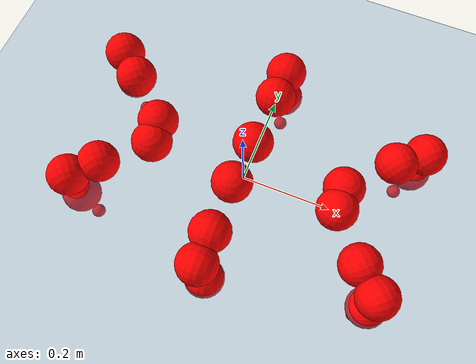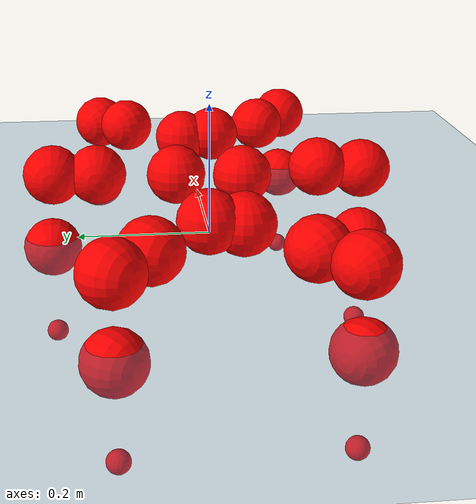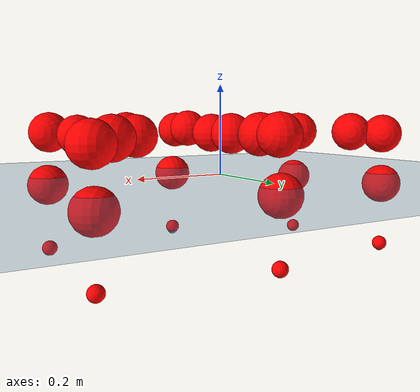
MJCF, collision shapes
<mujoco model="Golem">
  <compiler angle="radian" assetdir="assets" balanceinertia="true" inertiafromgeom="false"/>

  <option timestep="0.005" density="1.2" viscosity="2e-05"/>

  <size nkey="1"/>

  <visual>
    <quality shadowsize="8192"/>
    <map shadowclip="0.5"/>
  </visual>

  <default>
    <default class="/">
      <joint armature="0.01" damping="0.01" frictionloss="0.01"/>
      <geom contype="0" conaffinity="0" group="1" solref="-1000 -80"/>
      <site size="0.01 0.005 0.005" group="5"/>
      <general forcelimited="true" biastype="affine" gainprm="25" biasprm="0 -25 -0.5"/>
      <default class="visual">
        <geom type="mesh" group="2"/>
      </default>
      <default class="collision">
        <geom group="3"/>
      </default>
      <default class="foot">
        <geom size="0.01 0 0" condim="6" group="4" priority="1" solimp="0.015 1 0.01"/>
      </default>
      <default class="reward_collision_sphere">
        <geom group="5" rgba="1 0 0 1"/>
      </default>
    </default>
  </default>

  <asset>
    <texture type="skybox" colorspace="auto" name="//unnamed_texture_0" builtin="gradient" rgb1="0.95 0.95 0.95" rgb2="0.95 0.95 0.95" width="100" height="600"/>
    <texture type="2d" colorspace="auto" name="texplane" builtin="checker" rgb1="0.345 0.575 0.748" rgb2="0.345 0.575 0.748" markrgb="1 1 1" width="512" height="512"/>
    <material name="MatPlane" class="/" texture="texplane" texuniform="true" texrepeat="2 2" specular="0.9"/>
    <mesh name="body" class="/" file="body.stl" scale="0.001 0.001 0.001"/>
    <mesh name="coxa" class="/" file="coxa.stl" scale="0.001 0.001 0.001"/>
    <mesh name="femur" class="/" file="femur.stl" scale="0.001 0.001 0.001"/>
    <mesh name="tibia" class="/" file="tibia.stl" scale="0.001 0.001 0.001"/>
    <mesh name="tarsus" class="/" file="tarsus.stl" scale="0.001 0.001 0.001"/>
  </asset>

  <worldbody>
    <geom name="floor" class="/" size="100 100 0.125" type="plane" group="0" material="MatPlane"/>
    <light name="toplight_shadow" class="/" pos="0 0 5" dir="0.0990148 0.0990148 -0.990148" type="directional" ambient="0.04 0.04 0.04" diffuse="0.55 0.55 0.55" specular="0.12 0.12 0.12"/>
    <light name="toplight_fill" class="/" pos="0 0 5" dir="0.0990148 0.0990148 -0.990148" type="directional" castshadow="false" ambient="0.04 0.04 0.04" diffuse="0.3 0.3 0.3" specular="0.08 0.08 0.08"/>
    <body name="trunk" pos="0.00203214 3.10833e-05 0.00614456" quat="1 0.000238573 0.000311174 -6.19051e-05">
      <inertial pos="0.000325079 -0.00420412 0.00420938" quat="0.999999 0.000665428 0.000824415 0.00021715" mass="4.64783" diaginertia="0.0373243 0.0010656 0.0380679"/>
      <joint name="//unnamed_joint_0" type="free"/>
      <geom name="//unnamed_geom_1" class="/" pos="0 0 0.0845086" quat="1 0 0 0" type="mesh" rgba="0.9 0.9 0.9 1" mesh="body"/>
      <site name="imu" class="/" pos="0.17408 -0.000399019 0.107839" size="0.0109449"/>
      <camera name="track" class="/" pos="0 -1.29037 0" quat="0.707107 0.707107 0 0" mode="trackcom"/>
      <camera name="ego_camera" class="/" pos="0.171317 0 0.132045" quat="-0.5 -0.5 0.5 0.5"/>
      <body name="coxa_RR" pos="-0.228623 -0.0534469 0.0814771" quat="0.379108 0.000493179 -0.00047271 -0.925352">
        <inertial pos="0.00725761 0.00223797 0.00223578" quat="0.999688 -0.0171002 0.0116032 -0.0140639" mass="0.256731" diaginertia="0.0399555 0.00112851 0.0430418"/>
        <joint name="coxa_joint_RR" class="/" pos="0 0 0" axis="0.00356853 -0.00777055 -0.999963" stiffness="0.00640573" range="-3.12348 3.17975" armature="0.0104854" damping="0" frictionloss="0.00818567"/>
        <geom name="//unnamed_geom_2" class="/" type="mesh" rgba="0.2 0.2 0.2 1" mesh="coxa"/>
        <geom name="//unnamed_geom_3" class="reward_collision_sphere" size="0.0437794" pos="-0.0395347 0 0"/>
        <body name="femur_RR" pos="0.0783691 -0.00201412 -0.00376053" quat="0.499999 -0.500007 0.500021 0.499973">
          <inertial pos="-0.00243597 4.65333e-05 -0.00602535" quat="1 -3.23072e-05 -0.000378976 0.000101275" mass="0.267284" diaginertia="0.0406329 0.00114646 0.0445622"/>
          <joint name="femur_joint_RR" class="/" pos="0 0 0" axis="-0.00431486 0.0248655 -0.999681" range="-3.11828 3.13317" armature="0.0114304" damping="0.0264078" frictionloss="0.0104768"/>
          <geom name="//unnamed_geom_4" class="/" type="mesh" rgba="0.9 0.9 0.9 1" mesh="femur"/>
          <geom name="//unnamed_geom_5" class="reward_collision_sphere" size="0.0437794"/>
          <body name="tibia_RR" pos="0.00357998 -0.0678561 0.00233468" quat="-9.31419e-05 1 1.2559e-05 -6.32559e-05">
            <inertial pos="0.000541975 -0.00519525 0.00610552" quat="0.999662 -0.0189044 0.0159738 -0.0079675" mass="0.258455" diaginertia="0.0426609 0.00115242 0.041671"/>
            <joint name="tibia_joint_RR" class="/" pos="0 0 0" axis="0.00499484 -0.00795964 0.999956" stiffness="0.0053379" range="-3.14083 3.205" armature="0.0102384" damping="0.00389038" frictionloss="0.0121725"/>
            <geom name="//unnamed_geom_6" class="/" type="mesh" rgba="0.2 0.2 0.2 1" mesh="tibia"/>
            <geom name="//unnamed_geom_7" class="reward_collision_sphere" size="0.0437794"/>
            <body name="tarsus_RR" pos="0.115592 0.00562079 0.00279685" quat="0.999996 -0.000427625 -4.70083e-05 0.00278304">
              <inertial pos="0.079697 0.00702364 7.23765e-05" quat="0.504966 0.494716 0.504148 0.496084" mass="0.275525" diaginertia="0.03941 0.00103239 0.0399176"/>
              <joint name="tarsus_joint_RR" class="/" pos="0 0 0" axis="-0.00492218 0.00112148 0.999987" stiffness="0.00124231" range="-3.15333 3.09242" armature="0.0111182" damping="0.0227015" frictionloss="0.00978235"/>
              <geom name="//unnamed_geom_8" class="/" type="mesh" rgba="0.9 0.9 0.9 1" mesh="tarsus"/>
              <geom name="foot_1" class="foot" size="0.0101435" pos="0.147596 0 0" quat="0 -0.707107 0 0.707107"/>
              <geom name="//unnamed_geom_10" class="reward_collision_sphere" size="0.0437794"/>
              <geom name="//unnamed_geom_11" class="reward_collision_sphere" size="0.0164173" pos="0.141666 0 0"/>
              <site name="foot_1" class="foot" pos="0.147596 0 0" quat="0 -0.707107 0 0.707107" size="0.0109449"/>
            </body>
          </body>
        </body>
      </body>
      <body name="coxa_RM" pos="-0.00705545 -0.0881468 0.0865628" quat="0.707944 0.00115565 -0.00075249 -0.706267">
        <inertial pos="0.000299893 0.00214206 0.0079889" quat="0.999987 -0.00219231 0.00438711 -0.00166357" mass="0.272442" diaginertia="0.0434527 0.00124475 0.0419755"/>
        <joint name="coxa_joint_RM" class="/" pos="0 0 0" axis="-0.00736364 0.00337977 -0.999967" range="-3.15415 3.09653" armature="0.0114422" damping="0.0133828" frictionloss="0.00968478"/>
        <geom name="//unnamed_geom_12" class="/" type="mesh" rgba="0.2 0.2 0.2 1" mesh="coxa"/>
        <geom name="//unnamed_geom_13" class="reward_collision_sphere" size="0.0437794" pos="-0.0395347 0 0"/>
        <body name="femur_RM" pos="0.0747905 0.00063798 0.00861232" quat="0.500708 -0.50208 0.496901 0.500296">
          <inertial pos="-0.0017023 0.0022059 0.0015485" quat="0.999464 -0.000269984 -0.0113325 -0.0307087" mass="0.268041" diaginertia="0.0373696 0.00113584 0.0395378"/>
          <joint name="femur_joint_RM" class="/" pos="0 0 0" axis="0.00279544 0.00171367 -0.999995" stiffness="0.00327341" range="-3.047 3.04522" armature="0.00690255" damping="0" frictionloss="0.00994525"/>
          <geom name="//unnamed_geom_14" class="/" type="mesh" rgba="0.9 0.9 0.9 1" mesh="femur"/>
          <geom name="//unnamed_geom_15" class="reward_collision_sphere" size="0.0437794"/>
          <body name="tibia_RM" pos="0.00517843 -0.0669999 0.000725983" quat="-5.70476e-07 1 1.50212e-07 -5.04033e-07">
            <inertial pos="-0.000545346 0.00225681 0.00573178" quat="0.999758 0.00776215 -0.00464102 0.0200463" mass="0.297534" diaginertia="0.0421923 0.00118607 0.0394752"/>
            <joint name="tibia_joint_RM" class="/" pos="0 0 0" axis="-0.00633903 -0.00681893 0.999957" range="-3.05216 3.23401" armature="0.0135312" damping="0.0108986" frictionloss="0.0106365"/>
            <geom name="//unnamed_geom_16" class="/" type="mesh" rgba="0.2 0.2 0.2 1" mesh="tibia"/>
            <geom name="//unnamed_geom_17" class="reward_collision_sphere" size="0.0437794"/>
            <body name="tarsus_RM" pos="0.112452 0.00445235 -0.00700319" quat="1 9.34755e-05 1.03135e-05 -3.38872e-05">
              <inertial pos="0.0793391 0.00138248 0.000514512" quat="0.507414 0.495442 0.5091 0.487735" mass="0.262742" diaginertia="0.0390112 0.00112044 0.0394468"/>
              <joint name="tarsus_joint_RM" class="/" pos="0 0 0" axis="0.00781269 -0.000930774 0.999969" stiffness="0.0245431" range="-3.09619 2.97411" armature="0.0109106" damping="0.038064" frictionloss="0.00987554"/>
              <geom name="//unnamed_geom_18" class="/" type="mesh" rgba="0.9 0.9 0.9 1" mesh="tarsus"/>
              <geom name="foot_2" class="foot" size="0.0131267" pos="0.147596 0 0" quat="0 -0.707107 0 0.707107"/>
              <geom name="//unnamed_geom_20" class="reward_collision_sphere" size="0.0437794"/>
              <geom name="//unnamed_geom_21" class="reward_collision_sphere" size="0.0164173" pos="0.141666 0 0"/>
              <site name="foot_2" class="foot" pos="0.147596 0 0" quat="0 -0.707107 0 0.707107" size="0.0109449"/>
            </body>
          </body>
        </body>
      </body>
      <body name="coxa_RF" pos="0.238247 -0.0538953 0.0896779" quat="0.923707 0.00276001 -1.5504e-05 -0.383089">
        <inertial pos="-0.00584911 0.00553357 -0.00194478" quat="0.999965 -0.00065921 -0.0033333 0.00764206" mass="0.254589" diaginertia="0.0371567 0.00108476 0.0410817"/>
        <joint name="coxa_joint_RF" class="/" pos="0 0 0" axis="-0.0206658 -0.0156552 -0.999664" range="-3.14998 3.09219" armature="0.010539" damping="0.017413" frictionloss="0.0109265"/>
        <geom name="//unnamed_geom_22" class="/" type="mesh" rgba="0.2 0.2 0.2 1" mesh="coxa"/>
        <geom name="//unnamed_geom_23" class="reward_collision_sphere" size="0.0437794" pos="-0.0395347 0 0"/>
        <body name="femur_RF" pos="0.0770258 -0.00835583 -0.00488865" quat="0.502303 -0.500686 0.500388 0.496606">
          <inertial pos="0.00200152 -0.00249233 0.000464284" quat="0.999962 -0.00655459 0.00567264 0.000795201" mass="0.265303" diaginertia="0.0401162 0.00115847 0.0393991"/>
          <joint name="femur_joint_RF" class="/" pos="0 0 0" axis="0.00441228 0.00110135 -0.99999" stiffness="0.0172573" range="-3.15996 3.10737" armature="0.0095285" damping="0.0105316" frictionloss="0.0100487"/>
          <geom name="//unnamed_geom_24" class="/" type="mesh" rgba="0.9 0.9 0.9 1" mesh="femur"/>
          <geom name="//unnamed_geom_25" class="reward_collision_sphere" size="0.0437794"/>
          <body name="tibia_RF" pos="-0.00525307 -0.0679549 0.000279172" quat="0.000862215 1 -0.000157389 -0.0002992">
            <inertial pos="-0.00283235 0.00413447 0.000384786" quat="0.999999 2.73467e-05 -0.000688664 -0.000812712" mass="0.286277" diaginertia="0.0437482 0.00120036 0.0407623"/>
            <joint name="tibia_joint_RF" class="/" pos="0 0 0" axis="-0.00719487 -0.00402471 0.999966" stiffness="0.0269923" range="-3.09935 3.23043" armature="0.0108787" damping="0.0527231" frictionloss="0.0108187"/>
            <geom name="//unnamed_geom_26" class="/" type="mesh" rgba="0.2 0.2 0.2 1" mesh="tibia"/>
            <geom name="//unnamed_geom_27" class="reward_collision_sphere" size="0.0437794"/>
            <body name="tarsus_RF" pos="0.114953 0.00565798 -0.000549686" quat="0.999999 -0.0010882 -0.0010155 -0.000348783">
              <inertial pos="0.0798171 0.00189585 0.00124591" quat="0.500345 0.500094 0.499854 0.499707" mass="0.262321" diaginertia="0.0406671 0.00106505 0.0420567"/>
              <joint name="tarsus_joint_RF" class="/" pos="0 0 0" axis="-0.00621192 0.0103426 0.999927" stiffness="0.00119381" range="-3.16698 3.10173" armature="0.0119433" damping="0" frictionloss="0.00973361"/>
              <geom name="//unnamed_geom_28" class="/" type="mesh" rgba="0.9 0.9 0.9 1" mesh="tarsus"/>
              <geom name="foot_3" class="foot" size="0.0103225" pos="0.147596 0 0" quat="0 -0.707107 0 0.707107"/>
              <geom name="//unnamed_geom_30" class="reward_collision_sphere" size="0.0437794"/>
              <geom name="//unnamed_geom_31" class="reward_collision_sphere" size="0.0164173" pos="0.141666 0 0"/>
              <site name="foot_3" class="foot" pos="0.147596 0 0" quat="0 -0.707107 0 0.707107" size="0.0109449"/>
            </body>
          </body>
        </body>
      </body>
      <body name="coxa_LR" pos="-0.23465 0.0497693 0.0889923" quat="0.382556 0.000265354 -0.000227099 0.923932">
        <inertial pos="-0.00016821 -0.000418781 0.0036797" quat="0.999875 0.00702283 -0.014113 0.00108451" mass="0.286077" diaginertia="0.0435178 0.00115579 0.0425529"/>
        <joint name="coxa_joint_LR" class="/" pos="0 0 0" axis="0.0218824 0.002472 -0.999757" range="-3.1491 3.09578" armature="0.0110261" damping="0.00660775" frictionloss="0.0088328"/>
        <geom name="//unnamed_geom_32" class="/" type="mesh" rgba="0.2 0.2 0.2 1" mesh="coxa"/>
        <geom name="//unnamed_geom_33" class="reward_collision_sphere" size="0.0437794" pos="-0.0395347 0 0"/>
        <body name="femur_LR" pos="0.0825269 0.00713287 -0.000767996" quat="0.498824 -0.499889 0.500396 0.500888">
          <inertial pos="-0.0022088 0.000609223 0.00727993" quat="0.999982 -0.00292269 -0.00244255 -0.0045548" mass="0.276298" diaginertia="0.0425432 0.00119585 0.0424214"/>
          <joint name="femur_joint_LR" class="/" pos="0 0 0" axis="0.0139989 0.0345115 0.999306" stiffness="0.00727968" range="-3.1457 3.13761" armature="0.00972225" damping="0" frictionloss="0.00972283"/>
          <geom name="//unnamed_geom_34" class="/" type="mesh" rgba="0.9 0.9 0.9 1" mesh="femur"/>
          <geom name="//unnamed_geom_35" class="reward_collision_sphere" size="0.0437794"/>
          <body name="tibia_LR" pos="0.00400565 -0.0718121 0.00295307" quat="0.000738891 1 0.000654476 -0.000139379">
            <inertial pos="-0.00209804 -0.00521813 -0.00204009" quat="0.999965 -0.0070545 -0.00338178 0.00300487" mass="0.254568" diaginertia="0.041745 0.00108313 0.0368666"/>
            <joint name="tibia_joint_LR" class="/" pos="0 0 0" axis="-0.0259738 -0.032132 -0.999146" range="-3.22724 3.30582" armature="0.00675048" damping="0.0439494" frictionloss="0.00939683"/>
            <geom name="//unnamed_geom_36" class="/" type="mesh" rgba="0.2 0.2 0.2 1" mesh="tibia"/>
            <geom name="//unnamed_geom_37" class="reward_collision_sphere" size="0.0437794"/>
            <body name="tarsus_LR" pos="0.116944 0.00073712 -0.000404837" quat="1 -0.000606823 0.000274554 -0.000251283">
              <inertial pos="0.0717797 -0.0020296 0.00838599" quat="0.499721 0.499417 0.500388 0.500473" mass="0.26419" diaginertia="0.0375828 0.00107036 0.0404449"/>
              <joint name="tarsus_joint_LR" class="/" pos="0 0 0" axis="-0.00538727 -0.00300891 -0.999981" range="-3.18209 3.1722" armature="0.012968" damping="0" frictionloss="0.0108893"/>
              <geom name="//unnamed_geom_38" class="/" type="mesh" rgba="0.9 0.9 0.9 1" mesh="tarsus"/>
              <geom name="foot_4" class="foot" size="0.011612" pos="0.147596 0 0" quat="0.707107 0 -0.707107 0"/>
              <geom name="//unnamed_geom_40" class="reward_collision_sphere" size="0.0437794"/>
              <geom name="//unnamed_geom_41" class="reward_collision_sphere" size="0.0164173" pos="0.141666 0 0"/>
              <site name="foot_4" class="foot" pos="0.147596 0 0" quat="0.707107 0 -0.707107 0" size="0.0109449"/>
            </body>
          </body>
        </body>
      </body>
      <body name="coxa_LM" pos="0.000526964 0.0891756 0.0877543" quat="0.707185 0.000614612 -0.000505791 0.707028">
        <inertial pos="0.00082607 0.00584255 -0.00767755" quat="0.999991 -0.00404718 0.00131312 1.86247e-05" mass="0.250066" diaginertia="0.0386765 0.00109596 0.0401773"/>
        <joint name="coxa_joint_LM" class="/" pos="0 0 0" axis="-0.00331861 0.0222935 -0.999746" range="-3.17814 3.1293" armature="0.0149749" damping="0" frictionloss="0.010727"/>
        <geom name="//unnamed_geom_42" class="/" type="mesh" rgba="0.2 0.2 0.2 1" mesh="coxa"/>
        <geom name="//unnamed_geom_43" class="reward_collision_sphere" size="0.0437794" pos="-0.0395347 0 0"/>
        <body name="femur_LM" pos="0.0782812 -0.00659754 0.00149036" quat="0.499672 -0.500299 0.500015 0.500014">
          <inertial pos="0.00712605 -0.00205882 0.00237229" quat="0.999949 -0.00951967 -0.00326584 0.000233074" mass="0.281608" diaginertia="0.0423666 0.00118111 0.0440854"/>
          <joint name="femur_joint_LM" class="/" pos="0 0 0" axis="-0.00922551 -0.0294286 0.999524" range="-3.14228 3.15272" armature="0.00991984" damping="0.0134246" frictionloss="0.0087291"/>
          <geom name="//unnamed_geom_44" class="/" type="mesh" rgba="0.9 0.9 0.9 1" mesh="femur"/>
          <geom name="//unnamed_geom_45" class="reward_collision_sphere" size="0.0437794"/>
          <body name="tibia_LM" pos="-0.000958825 -0.0648491 -0.000566251" quat="0.00011272 1 0.00041735 0.000357291">
            <inertial pos="0.00196365 0.00122431 -0.00338976" quat="0.999793 0.0121931 -0.0125965 -0.0103214" mass="0.277134" diaginertia="0.0394335 0.00109397 0.0413984"/>
            <joint name="tibia_joint_LM" class="/" pos="0 0 0" axis="-0.00863596 0.000569093 -0.999963" range="-3.09338 3.03096" armature="0.0123792" damping="0.0144648" frictionloss="0.0107118"/>
            <geom name="//unnamed_geom_46" class="/" type="mesh" rgba="0.2 0.2 0.2 1" mesh="tibia"/>
            <geom name="//unnamed_geom_47" class="reward_collision_sphere" size="0.0437794"/>
            <body name="tarsus_LM" pos="0.115006 0.00575025 0.000763754" quat="1 -9.63685e-05 0.000131175 0.000329215">
              <inertial pos="0.0725273 -0.000394875 -0.000597519" quat="0.499503 0.500167 0.499779 0.50055" mass="0.263793" diaginertia="0.038752 0.00109425 0.0374588"/>
              <joint name="tarsus_joint_LM" class="/" pos="0 0 0" axis="-0.00462485 -0.00316478 -0.999984" stiffness="0.0230166" range="-3.18068 3.10552" armature="0.011452" damping="0.0368822" frictionloss="0.0102397"/>
              <geom name="//unnamed_geom_48" class="/" type="mesh" rgba="0.9 0.9 0.9 1" mesh="tarsus"/>
              <geom name="foot_5" class="foot" size="0.0110391" pos="0.147596 0 0" quat="0.707107 0 -0.707107 0"/>
              <geom name="//unnamed_geom_50" class="reward_collision_sphere" size="0.0437794"/>
              <geom name="//unnamed_geom_51" class="reward_collision_sphere" size="0.0164173" pos="0.141666 0 0"/>
              <site name="foot_5" class="foot" pos="0.147596 0 0" quat="0.707107 0 -0.707107 0" size="0.0109449"/>
            </body>
          </body>
        </body>
      </body>
      <body name="coxa_LF" pos="0.237599 0.0525248 0.0853911" quat="0.923417 -0.00012368 -0.000539008 0.383798">
        <inertial pos="-0.00374139 -0.00221452 0.000779418" quat="0.999511 -0.0127051 0.0185145 0.0217568" mass="0.268064" diaginertia="0.0357196 0.00113963 0.0401376"/>
        <joint name="coxa_joint_LF" class="/" pos="0 0 0" axis="0.000678197 0.00443648 -0.99999" range="-3.0945 3.2468" armature="0.0115874" damping="0.00922157" frictionloss="0.0097629"/>
        <geom name="//unnamed_geom_52" class="/" type="mesh" rgba="0.2 0.2 0.2 1" mesh="coxa"/>
        <geom name="//unnamed_geom_53" class="reward_collision_sphere" size="0.0437794" pos="-0.0395347 0 0"/>
        <body name="femur_LF" pos="0.0843213 0.00430792 0.000344396" quat="0.499947 -0.500016 0.500084 0.499954">
          <inertial pos="0.00453949 -0.00334008 -0.001248" quat="1 0.000307007 9.31482e-05 6.61268e-05" mass="0.258753" diaginertia="0.0419203 0.00114531 0.0404209"/>
          <joint name="femur_joint_LF" class="/" pos="0 0 0" axis="-0.0265764 -0.0147052 0.999539" stiffness="0.0176953" range="-3.02685 3.17901" armature="0.0112011" damping="0.0235724" frictionloss="0.0110476"/>
          <geom name="//unnamed_geom_54" class="/" type="mesh" rgba="0.9 0.9 0.9 1" mesh="femur"/>
          <geom name="//unnamed_geom_55" class="reward_collision_sphere" size="0.0437794"/>
          <body name="tibia_LF" pos="0.00688393 -0.06911 -0.00567729" quat="0.000728697 0.999999 -0.00143736 -1.8448e-05">
            <inertial pos="0.00432858 -0.000244992 -0.00193298" quat="0.999162 0.0187917 -0.0354956 -0.00788759" mass="0.239511" diaginertia="0.0410329 0.00114786 0.0397594"/>
            <joint name="tibia_joint_LF" class="/" pos="0 0 0" axis="0.00842461 0.00314519 -0.99996" stiffness="0.020844" range="-3.14852 3.12883" armature="0.0118585" damping="0.0311032" frictionloss="0.00980248"/>
            <geom name="//unnamed_geom_56" class="/" type="mesh" rgba="0.2 0.2 0.2 1" mesh="tibia"/>
            <geom name="//unnamed_geom_57" class="reward_collision_sphere" size="0.0437794"/>
            <body name="tarsus_LF" pos="0.113734 0.00427174 -0.00525535" quat="1 4.11652e-05 0.000617817 0.00069481">
              <inertial pos="0.0808515 -0.00186701 0.00200007" quat="0.494972 0.498279 0.501048 0.50564" mass="0.303071" diaginertia="0.0425963 0.00120979 0.0424666"/>
              <joint name="tarsus_joint_LF" class="/" pos="0 0 0" axis="0.00143032 0.00126863 -0.999998" stiffness="0.0129214" range="-3.1667 3.11546" armature="0.0114637" damping="0" frictionloss="0.011796"/>
              <geom name="//unnamed_geom_58" class="/" type="mesh" rgba="0.9 0.9 0.9 1" mesh="tarsus"/>
              <geom name="foot_6" class="foot" size="0.00974842" pos="0.147596 0 0" quat="0.707107 0 -0.707107 0"/>
              <geom name="//unnamed_geom_60" class="reward_collision_sphere" size="0.0437794"/>
              <geom name="//unnamed_geom_61" class="reward_collision_sphere" size="0.0164173" pos="0.141666 0 0"/>
              <site name="foot_6" class="foot" pos="0.147596 0 0" quat="0.707107 0 -0.707107 0" size="0.0109449"/>
            </body>
          </body>
        </body>
      </body>
    </body>
  </worldbody>

  <contact>
    <pair class="/" geom1="floor" geom2="foot_1" name="//unnamed_contact_0"/>
    <pair class="/" geom1="floor" geom2="foot_2" name="//unnamed_contact_1"/>
    <pair class="/" geom1="floor" geom2="foot_3" name="//unnamed_contact_2"/>
    <pair class="/" geom1="floor" geom2="foot_4" name="//unnamed_contact_3"/>
    <pair class="/" geom1="floor" geom2="foot_5" name="//unnamed_contact_4"/>
    <pair class="/" geom1="floor" geom2="foot_6" name="//unnamed_contact_5"/>
  </contact>

  <actuator>
    <general name="coxa_joint_RR" class="/" joint="coxa_joint_RR" forcerange="-7.35915 7.35915" gainprm="26.746" biasprm="0 -26.746 -0.488302"/>
    <general name="femur_joint_RR" class="/" joint="femur_joint_RR" forcerange="-7.29801 7.29801" gainprm="26.746" biasprm="0 -26.746 -0.488302"/>
    <general name="tibia_joint_RR" class="/" joint="tibia_joint_RR" forcerange="-9.51627 9.51627" gainprm="26.746" biasprm="0 -26.746 -0.488302"/>
    <general name="tarsus_joint_RR" class="/" joint="tarsus_joint_RR" forcerange="-8.01207 8.01207" gainprm="26.746" biasprm="0 -26.746 -0.488302"/>
    <general name="coxa_joint_RM" class="/" joint="coxa_joint_RM" forcerange="-5.50232 5.50232" gainprm="26.746" biasprm="0 -26.746 -0.488302"/>
    <general name="femur_joint_RM" class="/" joint="femur_joint_RM" forcerange="-7.39971 7.39971" gainprm="26.746" biasprm="0 -26.746 -0.488302"/>
    <general name="tibia_joint_RM" class="/" joint="tibia_joint_RM" forcerange="-7.95521 7.95521" gainprm="26.746" biasprm="0 -26.746 -0.488302"/>
    <general name="tarsus_joint_RM" class="/" joint="tarsus_joint_RM" forcerange="-9.5355 9.5355" gainprm="26.746" biasprm="0 -26.746 -0.488302"/>
    <general name="coxa_joint_RF" class="/" joint="coxa_joint_RF" forcerange="-6.66135 6.66135" gainprm="26.746" biasprm="0 -26.746 -0.488302"/>
    <general name="femur_joint_RF" class="/" joint="femur_joint_RF" forcerange="-7.95347 7.95347" gainprm="26.746" biasprm="0 -26.746 -0.488302"/>
    <general name="tibia_joint_RF" class="/" joint="tibia_joint_RF" forcerange="-7.64404 7.64404" gainprm="26.746" biasprm="0 -26.746 -0.488302"/>
    <general name="tarsus_joint_RF" class="/" joint="tarsus_joint_RF" forcerange="-7.95068 7.95068" gainprm="26.746" biasprm="0 -26.746 -0.488302"/>
    <general name="coxa_joint_LR" class="/" joint="coxa_joint_LR" forcerange="-6.15895 6.15895" gainprm="26.746" biasprm="0 -26.746 -0.488302"/>
    <general name="femur_joint_LR" class="/" joint="femur_joint_LR" forcerange="-7.89422 7.89422" gainprm="26.746" biasprm="0 -26.746 -0.488302"/>
    <general name="tibia_joint_LR" class="/" joint="tibia_joint_LR" forcerange="-6.94096 6.94096" gainprm="26.746" biasprm="0 -26.746 -0.488302"/>
    <general name="tarsus_joint_LR" class="/" joint="tarsus_joint_LR" forcerange="-5.96936 5.96936" gainprm="26.746" biasprm="0 -26.746 -0.488302"/>
    <general name="coxa_joint_LM" class="/" joint="coxa_joint_LM" forcerange="-9.44617 9.44617" gainprm="26.746" biasprm="0 -26.746 -0.488302"/>
    <general name="femur_joint_LM" class="/" joint="femur_joint_LM" forcerange="-8.25421 8.25421" gainprm="26.746" biasprm="0 -26.746 -0.488302"/>
    <general name="tibia_joint_LM" class="/" joint="tibia_joint_LM" forcerange="-6.27479 6.27479" gainprm="26.746" biasprm="0 -26.746 -0.488302"/>
    <general name="tarsus_joint_LM" class="/" joint="tarsus_joint_LM" forcerange="-5.60664 5.60664" gainprm="26.746" biasprm="0 -26.746 -0.488302"/>
    <general name="coxa_joint_LF" class="/" joint="coxa_joint_LF" forcerange="-8.97439 8.97439" gainprm="26.746" biasprm="0 -26.746 -0.488302"/>
    <general name="femur_joint_LF" class="/" joint="femur_joint_LF" forcerange="-8.89561 8.89561" gainprm="26.746" biasprm="0 -26.746 -0.488302"/>
    <general name="tibia_joint_LF" class="/" joint="tibia_joint_LF" forcerange="-7.76512 7.76512" gainprm="26.746" biasprm="0 -26.746 -0.488302"/>
    <general name="tarsus_joint_LF" class="/" joint="tarsus_joint_LF" forcerange="-8.21069 8.21069" gainprm="26.746" biasprm="0 -26.746 -0.488302"/>
  </actuator>

  <sensor>
    <gyro site="imu" name="imu_angular_velocity"/>
    <velocimeter site="imu" name="imu_linear_velocity"/>
    <framelinvel objtype="site" objname="foot_1" name="foot_1_global_linear_velocity"/>
    <framelinvel objtype="site" objname="foot_2" name="foot_2_global_linear_velocity"/>
    <framelinvel objtype="site" objname="foot_3" name="foot_3_global_linear_velocity"/>
    <framelinvel objtype="site" objname="foot_4" name="foot_4_global_linear_velocity"/>
    <framelinvel objtype="site" objname="foot_5" name="foot_5_global_linear_velocity"/>
    <framelinvel objtype="site" objname="foot_6" name="foot_6_global_linear_velocity"/>
  </sensor>

  <keyframe>
    <key name="home" qpos="0 0 0.1457 1 0 0 0 0 0 0 0 0 0 0 0 0 0 0 0 0 0 0 0 0 0 0 0 0 0 0 0"/>
  </keyframe>
</mujoco>
